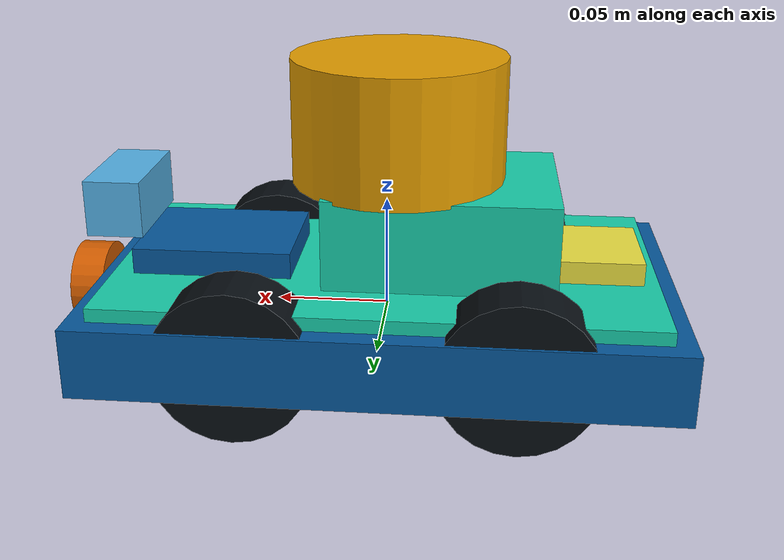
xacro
<?xml version="1.0"?>
<robot xmlns:xacro="http://www.ros.org/wiki/xacro" name="wildebeest_pro">
  <xacro:arg name="prefix" default=""/>
  <xacro:arg name="use_sim" default="false"/>
  <xacro:arg name="simulate_gps" default="false"/>

  <xacro:property name="prefix" value="$(arg prefix)"/>
  <xacro:property name="use_sim" value="$(arg use_sim)"/>
  <xacro:property name="simulate_gps" value="$(arg simulate_gps)"/>
  <xacro:property name="pi" value="3.1415926535897931"/>

  <!-- CAD-derived nominal geometry. Skid-steer scrub makes the effective track a
       calibration value; measure the assembled robot before autonomous use. -->
  <xacro:property name="base_length" value="0.257"/>
  <xacro:property name="base_width" value="0.150"/>
  <xacro:property name="base_height" value="0.031"/>
  <xacro:property name="wheel_radius" value="0.033622"/>
  <xacro:property name="wheel_width" value="0.025065"/>
  <xacro:property name="wheel_separation" value="0.121843"/>
  <xacro:property name="wheelbase" value="0.117150"/>

  <xacro:include filename="$(find wildebeest_description)/urdf/materials.xacro"/>
  <xacro:include filename="$(find wildebeest_description)/urdf/wildebeest.gazebo.xacro"/>

  <xacro:macro name="box_inertial" params="mass x y z">
    <inertial>
      <mass value="${mass}"/>
      <origin xyz="0 0 0" rpy="0 0 0"/>
      <inertia
        ixx="${mass * (y*y + z*z) / 12.0}" ixy="0" ixz="0"
        iyy="${mass * (x*x + z*z) / 12.0}" iyz="0"
        izz="${mass * (x*x + y*y) / 12.0}"/>
    </inertial>
  </xacro:macro>

  <xacro:macro name="wheel" params="position side x y">
    <link name="${prefix}${position}_${side}_wheel_link">
      <visual>
        <origin rpy="${pi/2.0} 0 0"/>
        <geometry><cylinder radius="${wheel_radius}" length="${wheel_width}"/></geometry>
        <material name="wildebeest_dark"/>
      </visual>
      <collision>
        <origin rpy="${pi/2.0} 0 0"/>
        <geometry><cylinder radius="${wheel_radius}" length="${wheel_width}"/></geometry>
      </collision>
      <!-- Simulation-only placeholder mass/inertia; replace with measured values. -->
      <inertial>
        <mass value="0.16"/>
        <inertia ixx="0.000054" ixy="0" ixz="0" iyy="0.000090" iyz="0" izz="0.000054"/>
      </inertial>
    </link>
    <joint name="${prefix}${position}_${side}_wheel_joint" type="continuous">
      <parent link="${prefix}base_link"/>
      <child link="${prefix}${position}_${side}_wheel_link"/>
      <origin xyz="${x} ${y} 0" rpy="0 0 0"/>
      <!-- Negative Y makes a positive joint velocity roll toward base +X. -->
      <axis xyz="0 -1 0"/>
      <limit effort="8.0" velocity="15.0"/>
      <dynamics damping="0.03" friction="0.02"/>
    </joint>
    <transmission name="${prefix}${position}_${side}_wheel_transmission">
      <type>transmission_interface/SimpleTransmission</type>
      <joint name="${prefix}${position}_${side}_wheel_joint">
        <hardwareInterface>hardware_interface/VelocityJointInterface</hardwareInterface>
      </joint>
      <actuator name="${prefix}${position}_${side}_wheel_motor">
        <hardwareInterface>hardware_interface/VelocityJointInterface</hardwareInterface>
        <mechanicalReduction>1</mechanicalReduction>
      </actuator>
    </transmission>
  </xacro:macro>

  <link name="${prefix}base_footprint"/>

  <link name="${prefix}base_link">
    <visual>
      <geometry><box size="${base_length} ${base_width} ${base_height}"/></geometry>
      <material name="wildebeest_blue"/>
    </visual>
    <visual>
      <origin xyz="0 0 0.0185"/>
      <geometry><box size="0.239 0.132 0.006"/></geometry>
      <material name="wildebeest_accent"/>
    </visual>
    <collision>
      <geometry><box size="${base_length} ${base_width} ${base_height}"/></geometry>
    </collision>
    <!-- The CAD excerpt did not provide mass properties. This is a simulation placeholder. -->
    <xacro:box_inertial mass="2.5" x="${base_length}" y="${base_width}" z="${base_height}"/>
  </link>

  <joint name="${prefix}base_footprint_joint" type="fixed">
    <parent link="${prefix}base_link"/>
    <child link="${prefix}base_footprint"/>
    <origin xyz="0 0 ${-wheel_radius}"/>
  </joint>

  <xacro:wheel position="front" side="left" x="${wheelbase/2.0}" y="${wheel_separation/2.0}"/>
  <xacro:wheel position="rear" side="left" x="${-wheelbase/2.0}" y="${wheel_separation/2.0}"/>
  <xacro:wheel position="front" side="right" x="${wheelbase/2.0}" y="${-wheel_separation/2.0}"/>
  <xacro:wheel position="rear" side="right" x="${-wheelbase/2.0}" y="${-wheel_separation/2.0}"/>

  <link name="${prefix}jetson_link">
    <visual><geometry><box size="0.100 0.080 0.040"/></geometry><material name="wildebeest_accent"/></visual>
    <collision><geometry><box size="0.100 0.080 0.040"/></geometry></collision>
    <xacro:box_inertial mass="0.16" x="0.100" y="0.080" z="0.040"/>
  </link>
  <joint name="${prefix}jetson_joint" type="fixed">
    <parent link="${prefix}base_link"/><child link="${prefix}jetson_link"/>
    <origin xyz="-0.025 0 0.042"/>
  </joint>

  <link name="${prefix}arduino_link">
    <visual><geometry><box size="0.070 0.055 0.014"/></geometry><material name="wildebeest_blue"/></visual>
    <xacro:box_inertial mass="0.04" x="0.070" y="0.055" z="0.014"/>
  </link>
  <joint name="${prefix}arduino_joint" type="fixed">
    <parent link="${prefix}base_link"/><child link="${prefix}arduino_link"/>
    <origin xyz="0.075 0 0.026"/>
  </joint>

  <link name="${prefix}lidar_link">
    <visual>
      <geometry><cylinder radius="0.047" length="0.055"/></geometry>
      <material name="sensor_lidar_orange"/>
    </visual>
    <collision><geometry><cylinder radius="0.047" length="0.055"/></geometry></collision>
    <inertial><mass value="0.16"/><inertia ixx="0.00010" ixy="0" ixz="0" iyy="0.00010" iyz="0" izz="0.00016"/></inertial>
  </link>
  <joint name="${prefix}lidar_joint" type="fixed">
    <parent link="${prefix}base_link"/><child link="${prefix}lidar_link"/>
    <origin xyz="-0.005 0 0.088"/>
  </joint>

  <link name="${prefix}imu_link">
    <visual><geometry><box size="0.026 0.020 0.006"/></geometry><material name="sensor_imu_rose"/></visual>
    <inertial><mass value="0.01"/><inertia ixx="0.000001" ixy="0" ixz="0" iyy="0.000001" iyz="0" izz="0.000001"/></inertial>
  </link>
  <joint name="${prefix}imu_joint" type="fixed">
    <parent link="${prefix}base_link"/><child link="${prefix}imu_link"/>
    <origin xyz="0 0 0.024"/>
  </joint>

  <link name="${prefix}gps_link">
    <visual><geometry><box size="0.045 0.045 0.010"/></geometry><material name="sensor_gnss_yellow"/></visual>
    <xacro:box_inertial mass="0.02" x="0.045" y="0.045" z="0.010"/>
  </link>
  <joint name="${prefix}gps_joint" type="fixed">
    <parent link="${prefix}base_link"/><child link="${prefix}gps_link"/>
    <origin xyz="-0.090 0 0.027"/>
  </joint>

  <link name="${prefix}camera_link">
    <visual><geometry><box size="0.025 0.050 0.025"/></geometry><material name="sensor_camera_sky_blue"/></visual>
    <collision><geometry><box size="0.025 0.050 0.025"/></geometry></collision>
    <xacro:box_inertial mass="0.035" x="0.025" y="0.050" z="0.025"/>
  </link>
  <joint name="${prefix}camera_joint" type="fixed">
    <parent link="${prefix}base_link"/><child link="${prefix}camera_link"/>
    <origin xyz="0.118 0 0.050"/>
  </joint>
  <link name="${prefix}camera_optical_frame"/>
  <joint name="${prefix}camera_optical_joint" type="fixed">
    <parent link="${prefix}camera_link"/><child link="${prefix}camera_optical_frame"/>
    <origin xyz="0.013 0 0" rpy="${-pi/2.0} 0 ${-pi/2.0}"/>
  </joint>

  <link name="${prefix}ultrasonic_front_link">
    <visual><origin rpy="0 ${pi/2.0} 0"/><geometry><cylinder radius="0.019" length="0.015"/></geometry><material name="sensor_ultrasonic_vermillion"/></visual>
    <xacro:box_inertial mass="0.01" x="0.015" y="0.038" z="0.038"/>
  </link>
  <joint name="${prefix}ultrasonic_front_joint" type="fixed">
    <parent link="${prefix}base_link"/><child link="${prefix}ultrasonic_front_link"/>
    <origin xyz="0.136 0 0.005"/>
  </joint>

  <xacro:if value="${use_sim}">
    <xacro:wildebeest_gazebo prefix="${prefix}" simulate_gps="${simulate_gps}"/>
  </xacro:if>
</robot>

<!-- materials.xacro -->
<robot xmlns:xacro="http://www.ros.org/wiki/xacro">
  <material name="wildebeest_blue">
    <color rgba="0.025 0.35 0.62 1.0"/>
  </material>
  <material name="wildebeest_dark">
    <color rgba="0.035 0.055 0.075 1.0"/>
  </material>
  <material name="wildebeest_accent">
    <color rgba="0.1 0.82 0.68 1.0"/>
  </material>
  <!-- High-contrast sensor identification palette. These colors identify
       hardware in RViz/Gazebo; they do not report sensor health or status. -->
  <material name="sensor_lidar_orange">
    <color rgba="0.902 0.624 0.000 1.0"/>
  </material>
  <material name="sensor_imu_rose">
    <color rgba="0.800 0.475 0.655 1.0"/>
  </material>
  <material name="sensor_gnss_yellow">
    <color rgba="0.941 0.894 0.259 1.0"/>
  </material>
  <material name="sensor_camera_sky_blue">
    <color rgba="0.337 0.706 0.914 1.0"/>
  </material>
  <material name="sensor_ultrasonic_vermillion">
    <color rgba="0.835 0.369 0.000 1.0"/>
  </material>
</robot>
